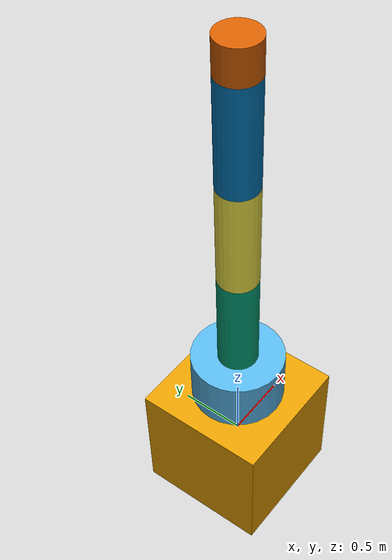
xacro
<?xml version="1.0" ?>

<robot name="mrm" xmlns:xacro="http://www.ros.org/wiki/xacro">

  <!-- BGN - Include -->
  <xacro:include filename="$(find visual_servoing)/robot_description/robot_parameters.xacro" />
  <xacro:include filename="$(find visual_servoing)/robot_description/links_joints.xacro" />
  <!-- END - Include -->

  <!-- BGN - Robot description -->
  <m_link_box name="${link_00_name}"
              origin_rpy="0 0 0" origin_xyz="0 0 0"
              mass="1024"
              ixx="170.667" ixy="0" ixz="0"
              iyy="170.667" iyz="0"
              izz="170.667"
              size="1 1 1" />

  <m_joint name="${link_00_name}__${link_01_name}" type="revolute"
           axis_xyz="0 0 1"
           origin_rpy="0 0 0" origin_xyz="0 0 0.5"
           parent="base_link" child="link_01"
           limit_e="1000" limit_l="-3.14" limit_u="3.14" limit_v="0.5" />

  <m_link_cylinder name="${link_01_name}"
              origin_rpy="0 0 0" origin_xyz="0 0 0.2"
              mass="157.633"
              ixx="13.235" ixy="0" ixz="0"
              iyy="13.235" iyz="0"
              izz="9.655"
              length="0.4" radius="0.35" />

  <m_joint name="${link_01_name}__${link_02_name}" type="revolute"
           axis_xyz="0 1 0"
           origin_rpy="0 0 0" origin_xyz="0 0 0.4"
           parent="link_01" child="link_02"
           limit_e="1000" limit_l="0" limit_u="0.5" limit_v="0.5" />

  <m_link_cylinder name="${link_02_name}"
              origin_rpy="0 0 0" origin_xyz="0 0 0.4"
              mass="57.906"
              ixx="12.679" ixy="0" ixz="0"
              iyy="12.679" iyz="0"
              izz="0.651"
              radius="0.15" length="0.8" />

  <m_joint name="${link_02_name}__${link_03_name}" type="revolute"
           axis_xyz="0 1 0"
           origin_rpy="0 0 0" origin_xyz="0 0 0.8"
           parent="link_02" child="link_03"
           limit_e="1000" limit_l="0" limit_u="0.75" limit_v="0.5" />

  <m_link_cylinder name="${link_03_name}"
              origin_rpy="0 0 0" origin_xyz="0 0 0.4"
              mass="57.906"
              ixx="12.679" ixy="0" ixz="0"
              iyy="12.679" iyz="0"
              izz="0.651"
              radius="0.15" length="0.8" />

  <m_joint name="${link_03_name}__${link_04_name}" type="revolute"
           axis_xyz="0 1 0"
           origin_rpy="0 0 0" origin_xyz="0 0 0.8"
           parent="link_03" child="link_04"
           limit_e="1000" limit_l="0" limit_u="0.75" limit_v="0.5" />

  <m_link_cylinder name="${link_04_name}"
              origin_rpy="0 0 0" origin_xyz="0 0 0.4"
              mass="57.906"
              ixx="12.679" ixy="0" ixz="0"
              iyy="12.679" iyz="0"
              izz="0.651"
              radius="0.15" length="0.8" />

  <m_joint name="${link_04_name}__${link_05_name}" type="revolute"
           axis_xyz="0 0 1"
           origin_rpy="0 0 0" origin_xyz="0 0 0.8"
           parent="link_04" child="link_05"
           limit_e="1000" limit_l="-3.14" limit_u="3.14" limit_v="0.5" />

  <m_link_cylinder name="${link_05_name}"
              origin_rpy="0 0 0" origin_xyz="0 0 0.125"
              mass="18.056"
              ixx="0.479" ixy="0" ixz="0"
              iyy="0.479" iyz="0"
              izz="0.204"
              radius="0.15" length="0.25" />

  <!-- END - Robot description -->
  <gazebo reference="base_link">
   <gravity>0</gravity>
  </gazebo>
  <!-- Camera -->
  <joint name="camera_joint" type="fixed">
    <axis xyz="0 1 0" />
    <origin xyz="${camera_link} 0.15 0.7" rpy="0 0 0"/>
    <parent link="link_04"/>
    <child link="camera_link"/>
  </joint>

  <!-- Camera -->
  <link name="camera_link">
    <collision>
      <origin xyz="0 0 0" rpy="0 0 0"/>
      <geometry>
    <box size="${camera_link} ${camera_link} ${camera_link}"/>
      </geometry>
    </collision>

    <visual>
      <origin xyz="0 0 0" rpy="0 0 0"/>
      <geometry>
    <box size="${camera_link} ${camera_link} ${camera_link}"/>
      </geometry>
      <material name="red"/>
    </visual>

    <inertial>
      <mass value="1e-5" />
      <origin xyz="0 0 0" rpy="0 0 0"/>
      <inertia ixx="1e-6" ixy="0" ixz="0" iyy="1e-6" iyz="0" izz="1e-6" />
    </inertial>
  </link>

  <gazebo>
    <plugin name="gazebo_ros_control" filename="libgazebo_ros_control.so">
    </plugin>
  </gazebo>
  <!-- Camera -->
  <gazebo reference="camera_link">
          <gravity>0</gravity>
    <sensor type="camera" name="camera1">
      <update_rate>30.0</update_rate>
      <camera name="head">
        <horizontal_fov>1.3962634</horizontal_fov>
        <image>
          <width>800</width>
          <height>800</height>
          <format>R8G8B8</format>
        </image>
        <clip>
          <near>0.02</near>
          <far>300</far>
        </clip>
        <noise>
          <type>gaussian</type>
          <!-- Noise is sampled independently per pixel on each frame.
               That pixel's noise value is added to each of its color
               channels, which at that point lie in the range [0,1]. -->
          <mean>0.0</mean>
          <stddev>0.007</stddev>
        </noise>
      </camera>
      <plugin name="camera_controller" filename="libgazebo_ros_camera.so">
        <alwaysOn>true</alwaysOn>
        <updateRate>0.0</updateRate>
        <cameraName>mrm/camera1</cameraName>
        <imageTopicName>image_raw</imageTopicName>
        <cameraInfoTopicName>camera_info</cameraInfoTopicName>
        <frameName>camera_link_optical</frameName>
        <hackBaseline>0.0</hackBaseline>
        <distortionK1>0.0</distortionK1>
        <distortionK2>0.0</distortionK2>
        <distortionK3>0.0</distortionK3>
        <distortionT1>0.0</distortionT1>
        <distortionT2>0.0</distortionT2>
        <CxPrime>0</CxPrime>
        <Cx>0.0</Cx>
        <Cy>0.0</Cy>
        <focalLength>0.0</focalLength>
      </plugin>
    </sensor>
  </gazebo>
</robot>

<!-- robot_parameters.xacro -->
<robot xmlns:xacro="http://www.ros.org/wiki/xacro">
  <xacro:property name="link_00_name" value="base_link" />
  <xacro:property name="link_01_name" value="link_01" />
  <xacro:property name="link_02_name" value="link_02" />
  <xacro:property name="link_03_name" value="link_03" />
  <xacro:property name="link_04_name" value="link_04" />
  <xacro:property name="link_05_name" value="link_05" />
  <xacro:property name="camera_link" value="0.05" /> <!-- Size of square 'camera' box -->
</robot>

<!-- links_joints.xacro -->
<robot xmlns:xacro="http://www.ros.org/wiki/xacro">

  <xacro:macro name="m_joint" params="name type axis_xyz origin_rpy origin_xyz parent child limit_e limit_l limit_u limit_v">
    <joint name="${name}" type="${type}">
      <axis xyz="${axis_xyz}" />
      <limit effort="${limit_e}" lower="${limit_l}" upper="${limit_u}" velocity="${limit_v}" />
      <origin rpy="${origin_rpy}" xyz="${origin_xyz}" />
      <parent link="${parent}" />
      <child link="${child}" />
    </joint>
    <transmission name="trans_${name}">
      <type>transmission_interface/SimpleTransmission</type>
      <joint name="${name}">
        <hardwareInterface>hardware_interface/EffortJointInterface</hardwareInterface>
      </joint>
      <actuator name="motor_${name}">
        <hardwareInterface>hardware_interface/EffortJointInterface</hardwareInterface>
        <mechanicalReduction>1</mechanicalReduction>
      </actuator>
    </transmission>
  </xacro:macro>

  <xacro:macro name="m_link_cylinder" params="name origin_xyz origin_rpy radius length mass ixx ixy ixz iyy iyz izz">
    <link name="${name}">
      <inertial>
        <mass value="${mass}" />
        <origin rpy="${origin_rpy}" xyz="${origin_xyz}" />
        <inertia ixx="${ixx}" ixy="${ixy}" ixz="${ixz}" iyy="${iyy}" iyz="${iyz}" izz="${izz}" />
      </inertial>
      <collision>
        <origin rpy="${origin_rpy}" xyz="${origin_xyz}" />
        <geometry>
          <cylinder radius="${radius}" length="${length}" />
        </geometry>
      </collision>
      <visual>
        <origin rpy="${origin_rpy}" xyz="${origin_xyz}" />
        <geometry>
          <cylinder radius="${radius}" length="${length}" />
        </geometry>
      </visual>
    </link>
  </xacro:macro>

  <xacro:macro name="m_link_box" params="name origin_xyz origin_rpy size mass ixx ixy ixz iyy iyz izz">
    <link name="${name}">
      <inertial>
        <mass value="${mass}" />
        <origin rpy="${origin_rpy}" xyz="${origin_xyz}" />
        <inertia ixx="${ixx}" ixy="${ixy}" ixz="${ixz}" iyy="${iyy}" iyz="${iyz}" izz="${izz}" />
      </inertial>
      <collision>
        <origin rpy="${origin_rpy}" xyz="${origin_xyz}" />
        <geometry>
          <box size="${size}" />
        </geometry>
      </collision>
      <visual>
        <origin rpy="${origin_rpy}" xyz="${origin_xyz}" />
        <geometry>
          <box size="${size}" />
        </geometry>
      </visual>
    </link>
  </xacro:macro>

</robot>
